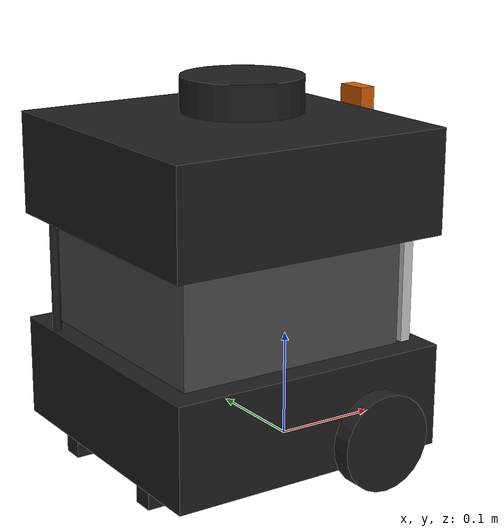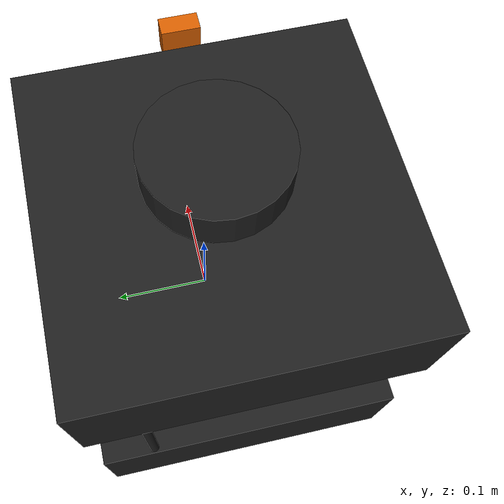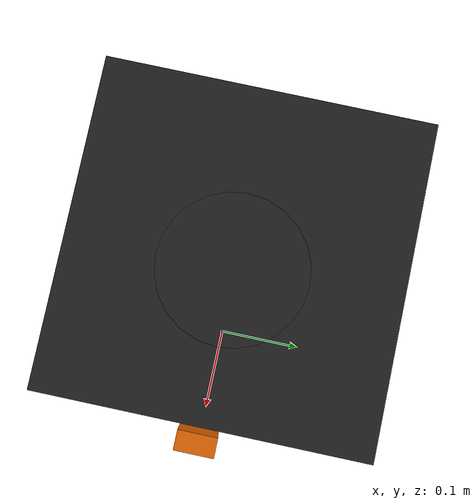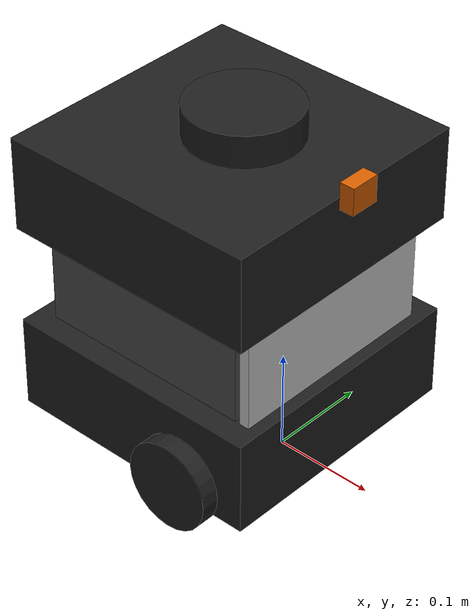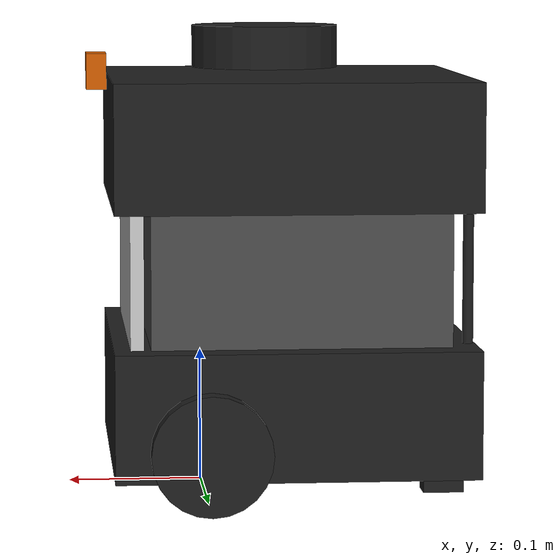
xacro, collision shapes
<?xml version="1.0"?>
<!-- TurtleBot3 Manipulation -->
<robot name="turtlebot3_manipulation" xmlns:xacro="http://www.ros.org/wiki/xacro">
  <xacro:arg name="prefix" default="" />
  <xacro:arg name="use_sim" default="false" />

  <xacro:arg name="use_fake_hardware" default="false" />
  <xacro:arg name="fake_sensor_commands" default="false" />

  <!-- Import materials macro -->
  <xacro:include filename="$(find turtlebot3_manipulation_gazebo)/gazebo/materials.xacro" />

  <!-- Include TurtleBot3 Waffle Pi urdf macro -->
  <xacro:include filename="$(find turtlebot3_manipulation_gazebo)/urdf/turtlebot3_waffle_pi.urdf.xacro" />

  <!-- Include TurtleBot3 Waffle Pi gazebo macro -->
  <xacro:include filename="$(find turtlebot3_manipulation_gazebo)/gazebo/turtlebot3_waffle_pi.gazebo.xacro" />

  <!-- Include OpenManipulator-X urdf macro -->
  <!--xacro:include filename="$(find turtlebot3_manipulation_gazebo)/urdf/open_manipulator_x.urdf.xacro" /-->

  <!-- Include OpenManipulator-X gazebo macro -->
  <!--/xacro:include filename="$(find turtlebot3_manipulation_gazebo)/gazebo/open_manipulator_x.gazebo.xacro" /-->

  <!-- Include TurtleBot3 Manipulation ros2 control macro -->
  <!--xacro:include filename="$(find turtlebot3_manipulation_gazebo)/ros2_control/turtlebot3_manipulation_system.ros2_control.xacro" /-->

  <xacro:turtlebot3_waffle_pi prefix="$(arg prefix)" />
  <xacro:turtlebot3_waffle_pi_gazebo prefix="$(arg prefix)" />

  <!-- Used for fixing OpenManipulator-X on TurtleBot3 Waffle Pi -->

</robot>

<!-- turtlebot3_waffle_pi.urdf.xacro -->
<!-- TurtleBot3 Waffle Pi -->
<!--
Copied and modified from turtlebot3 example -
https://github.com/ROBOTIS-GIT/turtlebot3/blob/kinetic-devel/turtlebot3_description/urdf/turtlebot3_waffle_pi_for_open_manipulator.urdf.xacro
-->
<robot xmlns:xacro="http://www.ros.org/wiki/xacro">

  <xacro:macro name="pillar" params="name x y">
    <link name="${prefix}${name}_pillar_link">
      <visual>
        <geometry>
          <cylinder length="0.11" radius="0.0040"/>
        </geometry>
        <material name="light_black"/>
      </visual>
      <collision>
        <geometry>
          <cylinder length="0.11" radius="0.0040"/>
        </geometry>
      </collision>
      <inertial>
        <mass value="0.01" />
        <inertia ixx="0.001" ixy="0.0" ixz="0.0" iyy="0.001" iyz="0.0" izz="0.001" />
      </inertial>
    </link>

    <joint name="${prefix}${name}_pillar_joint" type="fixed">
      <origin xyz="${x} ${y} 0.144" rpy="0 0 0"/>
      <parent link="${prefix}base_link"/>
      <child link="${prefix}${name}_pillar_link"/>
    </joint>
  </xacro:macro>

  <xacro:macro name="turtlebot3_waffle_pi" params="prefix">

  <xacro:property
    name="meshes_file_direction"
    value="package://turtlebot3_manipulation_gazebo/meshes/turtlebot3_waffle_pi"/>

  <link name="${prefix}base_footprint"/>

  <joint name="${prefix}base_joint" type="fixed">
    <parent link="${prefix}base_footprint"/>
    <child link="${prefix}base_link" />
    <origin xyz="0 0 0.021" rpy="0 0 0"/>
  </joint>

  <link name="${prefix}base_link">
    <visual>
      <origin xyz="-0.064 0 0.0" rpy="0 0 0"/>
      <geometry>
        <mesh filename="${meshes_file_direction}/base.stl" scale="0.001 0.001 0.001"/>
      </geometry>
      <material name="light_black"/>
    </visual>

    <collision>
      <origin xyz="-0.064 0 0.047" rpy="0 0 0"/>
      <geometry>
        <box size="0.266 0.266 0.094"/>
      </geometry>
    </collision>

    <inertial>
      <origin xyz="0 0 0" rpy="0 0 0"/>
      <mass value="5.0"/>
      <inertia ixx="3.1e-02" ixy="0" ixz="0"
               iyy="3.1e-02" iyz="0"
               izz="5.3e-02" />
    </inertial>
  </link>

  <xacro:pillar name="back_right"  x="-0.192" y="0.087" />

  <!--위의 플레이트 추가-->
  <link name="${prefix}upper_plate_link">
    <visual>
      <origin xyz="-0.064 0 0.0" rpy="0 0 0"/>
      <geometry>
        <mesh filename="${meshes_file_direction}/base.stl" scale="0.001 0.001 0.001"/>
      </geometry>
      <material name="light_black"/>
    </visual>

    <collision>
      <origin xyz="-0.064 0 0.047" rpy="0 0 0"/>
      <geometry>
        <box size="0.266 0.266 0.094"/>
      </geometry>
    </collision>

    <inertial>
      <origin xyz="0 0 0" rpy="0 0 0"/>
      <mass value="0.3"/>
      <inertia ixx="2e-03" ixy="0" ixz="0"
               iyy="2e-03" iyz="0"
               izz="3e-03" />
    </inertial>
  </link>

  <joint name="${prefix}upper_plate_joint" type="fixed">
    <parent link="${prefix}base_link"/>
    <child link="${prefix}upper_plate_link" />
    <origin xyz="0 0 0.194" rpy="0 0 0"/>
  </joint>

  <joint name="${prefix}storage_box_joint" type="fixed">
    <parent link="${prefix}base_link"/>
    <child link="${prefix}storage_box_link"/>
    <origin xyz="-0.068 0 0.144" rpy="0 0 0"/>
  </joint>

  <link name="${prefix}storage_box_link">
    <visual>
      <origin xyz="0 0 -0.045" rpy="0 0 0"/>
      <geometry>
        <box size="0.22 0.22 0.01"/>
      </geometry>
      <material name="dark"/>
    </visual>
    <visual>
      <origin xyz="-0.105 0 0" rpy="0 0 0"/>
      <geometry>
        <box size="0.01 0.22 0.1"/>
      </geometry>
      <material name="dark"/>
    </visual>
    <visual>
      <origin xyz="0 0.105 0" rpy="0 0 0"/>
      <geometry>
        <box size="0.22 0.01 0.1"/>
      </geometry>
      <material name="dark"/>
    </visual>
    <visual>
      <origin xyz="0 -0.105 0" rpy="0 0 0"/>
      <geometry>
        <box size="0.22 0.01 0.1"/>
      </geometry>
      <material name="dark"/>
    </visual>

    <collision>
      <geometry>
        <box size="0.22 0.22 0.1"/>
      </geometry>
    </collision>
    <inertial>
      <mass value="0.1" />
      <inertia ixx="0.001" ixy="0.0" ixz="0.0" iyy="0.001" iyz="0.0" izz="0.001" />
    </inertial>

  </link>

  <joint name="${prefix}door_hinge_joint" type="revolute">
    <parent link="${prefix}storage_box_link"/>
    <child link="${prefix}door_link"/>
    <origin xyz="0.115 -0.11 0" rpy="0 0 0"/>
    <axis xyz="0 0 1"/>
    <limit lower="-1.83" upper="0.0" effort="10.0" velocity="0.5"/>

    <dynamics damping="0.1" friction="0.05"/>
  </joint>

  <link name="${prefix}door_link">
    <visual>
      <origin xyz="0.005 0.11 0" rpy="0 0 0"/>
      <geometry>
        <box size="0.01 0.22 0.1"/>
      </geometry>
      <material name="light_gray"/>
    </visual>
    <collision>
      <origin xyz="0.005 0.11 0" rpy="0 0 0"/>
      <geometry>
        <box size="0.01 0.22 0.1"/>
      </geometry>
    </collision>
    <inertial>
      <mass value="0.05" />
      <inertia ixx="0.001" ixy="0.0" ixz="0.0" iyy="0.001" iyz="0.0" izz="0.001" />
    </inertial>
  </link>

  <joint name="${prefix}wheel_left_joint" type="continuous">
    <parent link="${prefix}base_link"/>
    <child link="${prefix}wheel_left_link"/>
    <origin xyz="0.0 0.144 0.023" rpy="-1.57 0 0"/>
    <axis xyz="0 0 1"/>
  </joint>

  <link name="${prefix}wheel_left_link">
    <visual>
      <origin xyz="0 0 0" rpy="1.57 0 0"/>
      <geometry>
        <mesh filename="${meshes_file_direction}/left_tire.stl" scale="0.00133 0.00133 0.00133"/>
      </geometry>
      <material name="dark"/>
    </visual>

    <collision>
      <origin xyz="0 0 0" rpy="0 0 0"/>
      <geometry>
        <cylinder length="0.018" radius="0.044"/>
      </geometry>
    </collision>

    <inertial>
      <origin xyz="0 0 0" />
      <mass value="0.0507" />
      <inertia ixx="3.53e-05" ixy="0.0" ixz="0.0"
               iyy="3.53e-05" iyz="0.0"
               izz="6.55e-05" />
      </inertial>
  </link>

  <joint name="${prefix}wheel_right_joint" type="continuous">
    <parent link="${prefix}base_link"/>
    <child link="${prefix}wheel_right_link"/>
    <origin xyz="0.0 -0.144 0.023" rpy="-1.57 0 0"/>
    <axis xyz="0 0 1"/>
  </joint>

  <link name="${prefix}wheel_right_link">
    <visual>
      <origin xyz="0 0 0" rpy="1.57 0 0"/>
      <geometry>
        <mesh filename="${meshes_file_direction}/right_tire.stl" scale="0.00133 0.00133 0.00133"/>
      </geometry>
      <material name="dark"/>
    </visual>

    <collision>
      <origin xyz="0 0 0" rpy="0 0 0"/>
      <geometry>
        <cylinder length="0.018" radius="0.044"/>
      </geometry>
    </collision>

    <inertial>
      <origin xyz="0 0 0" />
      <mass value="0.0507" />
      <inertia ixx="3.53e-05" ixy="0.0" ixz="0.0"
               iyy="3.53e-05" iyz="0.0"
               izz="6.55e-05" />
      </inertial>
  </link>

  <joint name="${prefix}caster_back_right_joint" type="fixed">
    <parent link="${prefix}base_link"/>
    <child link="${prefix}caster_back_right_link"/>
    <origin xyz="-0.177 -0.064 -0.004" rpy="-1.57 0 0"/>
  </joint>

  <link name="${prefix}caster_back_right_link">

    <collision>
      <origin xyz="0 0.001 0" rpy="0 0 0"/>
      <geometry>
        <box size="0.030 0.031 0.020"/>
      </geometry>
    </collision>
    <inertial>
      <origin xyz="0 0 0" />
      <mass value="0.2" />
      <inertia ixx="0.005" ixy="0.0" ixz="0.0"
               iyy="0.005" iyz="0.0"
               izz="0.005" />
    </inertial>
  </link>

  <joint name="${prefix}caster_back_left_joint" type="fixed">
    <parent link="${prefix}base_link"/>
    <child link="${prefix}caster_back_left_link"/>
    <origin xyz="-0.177 0.064 -0.004" rpy="-1.57 0 0"/>
  </joint>

  <link name="${prefix}caster_back_left_link">

    <collision>
      <origin xyz="0 0.001 0" rpy="0 0 0"/>
      <geometry>
        <box size="0.030 0.031 0.020"/>
      </geometry>
    </collision>
    <inertial>
      <origin xyz="0 0 0" />
      <mass value="0.2" />
      <inertia ixx="0.005" ixy="0.0" ixz="0.0"
               iyy="0.005" iyz="0.0"
               izz="0.005" />
    </inertial>
  </link>

  <joint name="${prefix}caster_front_joint" type="fixed">
      <parent link="${prefix}base_link"/>
      <child link="${prefix}caster_front_link"/>
      <origin xyz="0.04 0.0 -0.004" rpy="0 0 0"/>
    </joint>

    <link name="${prefix}caster_front_link">
      <collision>
        <origin xyz="0 0 0" rpy="0 0 0"/>
        <geometry>
          <box size="0.030 0.031 0.020"/>
        </geometry>
      </collision>
      <inertial>
        <origin xyz="0 0 0" />
        <mass value="0.01" />
        <inertia ixx="0.001" ixy="0.0" ixz="0.0"
                iyy="0.001" iyz="0.0"
                izz="0.001" />
      </inertial>
    </link>

  <joint name="${prefix}imu_joint" type="fixed">
    <parent link="${prefix}base_link"/>
    <child link="${prefix}imu_link"/>
    <origin xyz="0.0 0 0.068" rpy="0 0 0"/>
  </joint>

  <link name="${prefix}imu_link"/>

  <joint name="${prefix}scan_joint" type="fixed">
    <parent link="${prefix}upper_plate_link"/>
    <child link="${prefix}base_scan"/>
    <origin xyz="-0.064 0 0.122" rpy="0 0 0"/>
  </joint>

  <link name="${prefix}base_scan">
    <visual>
      <origin xyz="0 0 0.0" rpy="0 0 0"/>
      <geometry>
        <mesh filename="${meshes_file_direction}/ladar.stl" scale="0.001 0.001 0.001"/>
      </geometry>
      <material name="dark"/>
    </visual>

    <collision>
      <origin xyz="0.015 0 -0.0065" rpy="0 0 0"/>
      <geometry>
        <cylinder length="0.0315" radius="0.055"/>
      </geometry>
    </collision>

    <inertial>
      <mass value="0.114" />
      <origin xyz="0 0 0" />
      <inertia ixx="0.001" ixy="0.0" ixz="0.0"
               iyy="0.001" iyz="0.0"
               izz="0.001" />
    </inertial>
  </link>

  <joint name="${prefix}camera_joint" type="fixed">
    <parent link="${prefix}upper_plate_link"/>
    <child link="${prefix}camera_link"/>
    <origin xyz="0.073 -0.011 0.084" rpy="0 0 0"/>
  </joint>

  <link name="${prefix}camera_link">
    <collision>
      <origin xyz="0.005 0.011 0.013" rpy="0 0 0"/>
      <geometry>
        <box size="0.015 0.030 0.027"/>
      </geometry>
    </collision>
  </link>

  <joint name="${prefix}camera_rgb_joint" type="fixed">
    <parent link="${prefix}camera_link"/>
    <child link="${prefix}camera_rgb_frame"/>
    <origin xyz="0.003 0.011 0.009" rpy="0 0 0"/>
  </joint>

  <link name="${prefix}camera_rgb_frame"/>

  <joint name="${prefix}camera_rgb_optical_joint" type="fixed">
    <parent link="${prefix}camera_rgb_frame"/>
    <child link="${prefix}camera_rgb_optical_frame"/>
    <origin xyz="0 0 0" rpy="-1.57 0 -1.57"/>
  </joint>

  <link name="${prefix}camera_rgb_optical_frame"/>

  </xacro:macro>

</robot>
